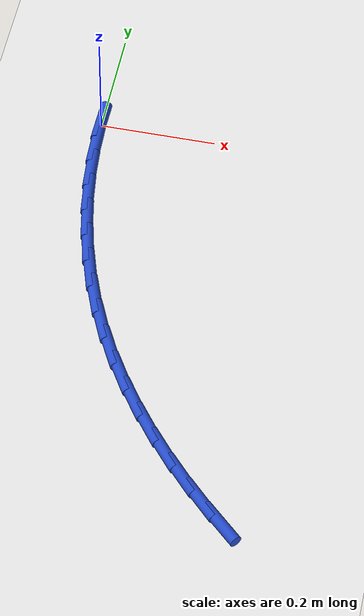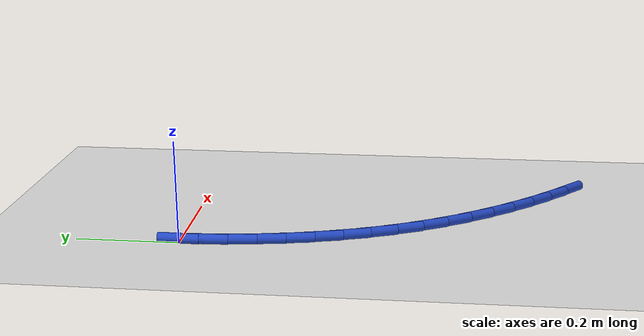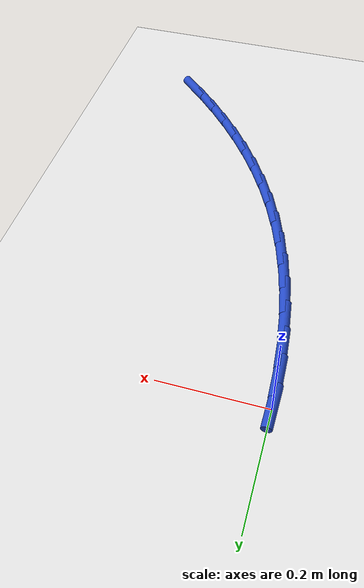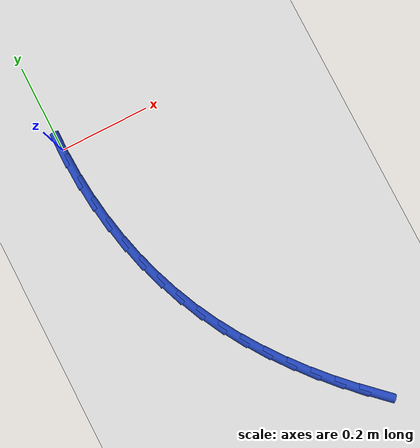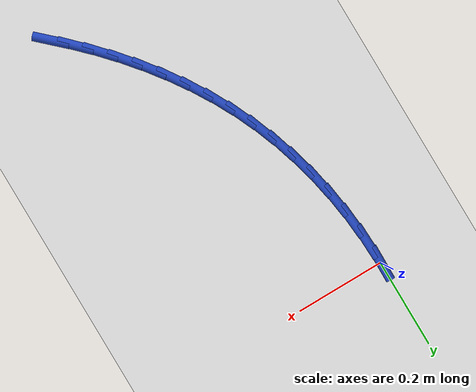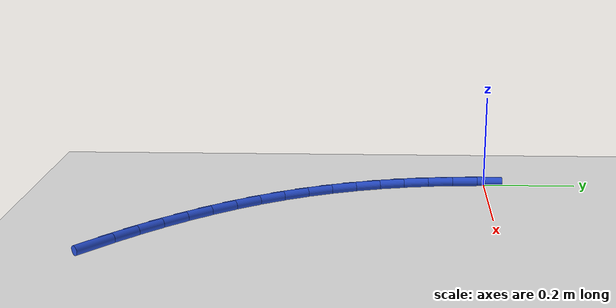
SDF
<sdf version="1.6">
 <world name="default">
  <model name="ground_plane">
   <static>1</static>
   <link name="link">
    <collision name="collision">
     <geometry><plane><normal>0 0 1</normal><size>100 100</size></plane></geometry>
     <surface><friction><ode><mu>100</mu><mu2>50</mu2></ode></friction></surface>
    </collision>
    <visual name="visual">
     <cast_shadows>0</cast_shadows>
     <geometry><plane><normal>0 0 1</normal><size>100 100</size></plane></geometry>
     <material>
      <script><uri>file://media/materials/scripts/gazebo.material</uri><name>Gazebo/WhiteGlow</name></script>
     </material>
    </visual>
   </link>
  </model>
  <model name="line">
   <link name="link_0">
    <pose>1.734723475976807e-17 8.326672684688674e-17 0.01 0 1.57 1.5549541364422934</pose>
    <collision name="collision">
     <geometry><cylinder><radius>0.01</radius><length>0.08</length></cylinder></geometry>
    </collision>
    <visual name="visual">
     <material>
      <script><name>Gazebo/Blue</name><uri>file://media/materials/scripts/gazebo.material</uri></script>
     </material>
     <geometry><cylinder><radius>0.01</radius><length>0.08</length></cylinder></geometry>
    </visual>
   </link>
   <link name="link_124">
    <pose>0.35589536800572663 -0.7635990680575071 0.01 0 1.57 -0.7547407089672062</pose>
    <collision name="collision">
     <geometry><cylinder><radius>0.01</radius><length>0.08</length></cylinder></geometry>
    </collision>
    <visual name="visual">
     <material>
      <script><name>Gazebo/Blue</name><uri>file://media/materials/scripts/gazebo.material</uri></script>
     </material>
     <geometry><cylinder><radius>0.01</radius><length>0.08</length></cylinder></geometry>
    </visual>
   </link>
   <link name="link_125">
    <pose>0.3169436035979554 -0.7269652902215289 0.01 0 1.57 -0.7960755701543549</pose>
    <collision name="collision">
     <geometry><cylinder><radius>0.01</radius><length>0.08</length></cylinder></geometry>
    </collision>
    <visual name="visual">
     <material>
      <script><name>Gazebo/Blue</name><uri>file://media/materials/scripts/gazebo.material</uri></script>
     </material>
     <geometry><cylinder><radius>0.01</radius><length>0.08</length></cylinder></geometry>
    </visual>
   </link>
   <link name="link_126">
    <pose>0.27916103229549905 -0.6883671398916725 0.01 0 1.57 -0.8391360587479947</pose>
    <collision name="collision">
     <geometry><cylinder><radius>0.01</radius><length>0.08</length></cylinder></geometry>
    </collision>
    <visual name="visual">
     <material>
      <script><name>Gazebo/Blue</name><uri>file://media/materials/scripts/gazebo.material</uri></script>
     </material>
     <geometry><cylinder><radius>0.01</radius><length>0.08</length></cylinder></geometry>
    </visual>
   </link>
   <link name="link_127">
    <pose>0.2428307384875172 -0.6479062739774678 0.01 0 1.57 -0.8843618237415061</pose>
    <collision name="collision">
     <geometry><cylinder><radius>0.01</radius><length>0.08</length></cylinder></geometry>
    </collision>
    <visual name="visual">
     <material>
      <script><name>Gazebo/Blue</name><uri>file://media/materials/scripts/gazebo.material</uri></script>
     </material>
     <geometry><cylinder><radius>0.01</radius><length>0.08</length></cylinder></geometry>
    </visual>
   </link>
   <link name="link_128">
    <pose>0.20823580656316762 -0.6056843493884424 0.01 0 1.57 -0.9321918417643104</pose>
    <collision name="collision">
     <geometry><cylinder><radius>0.01</radius><length>0.08</length></cylinder></geometry>
    </collision>
    <visual name="visual">
     <material>
      <script><name>Gazebo/Blue</name><uri>file://media/materials/scripts/gazebo.material</uri></script>
     </material>
     <geometry><cylinder><radius>0.01</radius><length>0.08</length></cylinder></geometry>
    </visual>
   </link>
   <link name="link_129">
    <pose>0.17565932091160905 -0.5618030230341251 0.01 0 1.57 -0.983064349693512</pose>
    <collision name="collision">
     <geometry><cylinder><radius>0.01</radius><length>0.08</length></cylinder></geometry>
    </collision>
    <visual name="visual">
     <material>
      <script><name>Gazebo/Blue</name><uri>file://media/materials/scripts/gazebo.material</uri></script>
     </material>
     <geometry><cylinder><radius>0.01</radius><length>0.08</length></cylinder></geometry>
    </visual>
   </link>
   <link name="link_130">
    <pose>0.14538436592199983 -0.5163639518240446 0.01 0 1.57 -1.0374111938126336</pose>
    <collision name="collision">
     <geometry><cylinder><radius>0.01</radius><length>0.08</length></cylinder></geometry>
    </collision>
    <visual name="visual">
     <material>
      <script><name>Gazebo/Blue</name><uri>file://media/materials/scripts/gazebo.material</uri></script>
     </material>
     <geometry><cylinder><radius>0.01</radius><length>0.08</length></cylinder></geometry>
    </visual>
   </link>
   <link name="link_131">
    <pose>0.1176940259834981 -0.46946879266772856 0.01 0 1.57 -1.0956287561348932</pose>
    <collision name="collision">
     <geometry><cylinder><radius>0.01</radius><length>0.08</length></cylinder></geometry>
    </collision>
    <visual name="visual">
     <material>
      <script><name>Gazebo/Blue</name><uri>file://media/materials/scripts/gazebo.material</uri></script>
     </material>
     <geometry><cylinder><radius>0.01</radius><length>0.08</length></cylinder></geometry>
    </visual>
   </link>
   <link name="link_132">
    <pose>0.09287040428189229 -0.4212192441621624 0.01 0 1.57 -1.1562270815117364</pose>
    <collision name="collision">
     <geometry><cylinder><radius>0.01</radius><length>0.08</length></cylinder></geometry>
    </collision>
    <visual name="visual">
     <material>
      <script><name>Gazebo/Blue</name><uri>file://media/materials/scripts/gazebo.material</uri></script>
     </material>
     <geometry><cylinder><radius>0.01</radius><length>0.08</length></cylinder></geometry>
    </visual>
   </link>
   <link name="link_133">
    <pose>0.07108775022493276 -0.3717215871853238 0.01 0 1.57 -1.215758259924457</pose>
    <collision name="collision">
     <geometry><cylinder><radius>0.01</radius><length>0.08</length></cylinder></geometry>
    </collision>
    <visual name="visual">
     <material>
      <script><name>Gazebo/Blue</name><uri>file://media/materials/scripts/gazebo.material</uri></script>
     </material>
     <geometry><cylinder><radius>0.01</radius><length>0.08</length></cylinder></geometry>
    </visual>
   </link>
   <link name="link_134">
    <pose>0.05231645194608375 -0.32109076387546065 0.01 0 1.57 -1.273704241064208</pose>
    <collision name="collision">
     <geometry><cylinder><radius>0.01</radius><length>0.08</length></cylinder></geometry>
    </collision>
    <visual name="visual">
     <material>
      <script><name>Gazebo/Blue</name><uri>file://media/materials/scripts/gazebo.material</uri></script>
     </material>
     <geometry><cylinder><radius>0.01</radius><length>0.08</length></cylinder></geometry>
    </visual>
   </link>
   <link name="link_135">
    <pose>0.03650423920225022 -0.26944267903573715 0.01 0 1.57 -1.3299764859544903</pose>
    <collision name="collision">
     <geometry><cylinder><radius>0.01</radius><length>0.08</length></cylinder></geometry>
    </collision>
    <visual name="visual">
     <material>
      <script><name>Gazebo/Blue</name><uri>file://media/materials/scripts/gazebo.material</uri></script>
     </material>
     <geometry><cylinder><radius>0.01</radius><length>0.08</length></cylinder></geometry>
    </visual>
   </link>
   <link name="link_136">
    <pose>0.0235988417503378 -0.21689323746931974 0.01 0 1.57 -1.3845327595765216</pose>
    <collision name="collision">
     <geometry><cylinder><radius>0.01</radius><length>0.08</length></cylinder></geometry>
    </collision>
    <visual name="visual">
     <material>
      <script><name>Gazebo/Blue</name><uri>file://media/materials/scripts/gazebo.material</uri></script>
     </material>
     <geometry><cylinder><radius>0.01</radius><length>0.08</length></cylinder></geometry>
    </visual>
   </link>
   <link name="link_137">
    <pose>0.013547989347251403 -0.16355834397937252 0.01 0 1.57 -1.437371869215789</pose>
    <collision name="collision">
     <geometry><cylinder><radius>0.01</radius><length>0.08</length></cylinder></geometry>
    </collision>
    <visual name="visual">
     <material>
      <script><name>Gazebo/Blue</name><uri>file://media/materials/scripts/gazebo.material</uri></script>
     </material>
     <geometry><cylinder><radius>0.01</radius><length>0.08</length></cylinder></geometry>
    </visual>
   </link>
   <link name="link_138">
    <pose>0.006299411749896196 -0.10955390336906029 0.01 0 1.57 -1.4885276832439314</pose>
    <collision name="collision">
     <geometry><cylinder><radius>0.01</radius><length>0.08</length></cylinder></geometry>
    </collision>
    <visual name="visual">
     <material>
      <script><name>Gazebo/Blue</name><uri>file://media/materials/scripts/gazebo.material</uri></script>
     </material>
     <geometry><cylinder><radius>0.01</radius><length>0.08</length></cylinder></geometry>
    </visual>
   </link>
   <link name="link_139">
    <pose>0.0018008387151773426 -0.05499582044154812 0.01 0 1.57 -1.538063012275799</pose>
    <collision name="collision">
     <geometry><cylinder><radius>0.01</radius><length>0.08</length></cylinder></geometry>
    </collision>
    <visual name="visual">
     <material>
      <script><name>Gazebo/Blue</name><uri>file://media/materials/scripts/gazebo.material</uri></script>
     </material>
     <geometry><cylinder><radius>0.01</radius><length>0.08</length></cylinder></geometry>
    </visual>
   </link>
  </model>
 </world>
</sdf>
